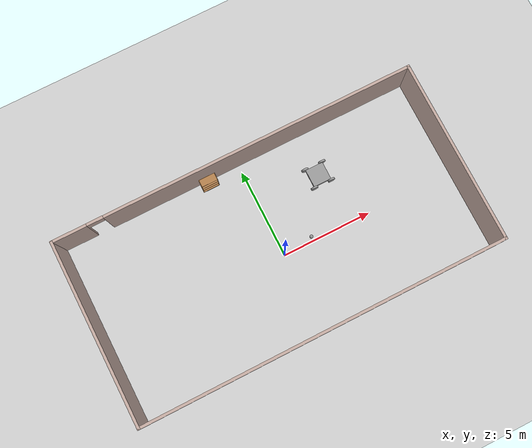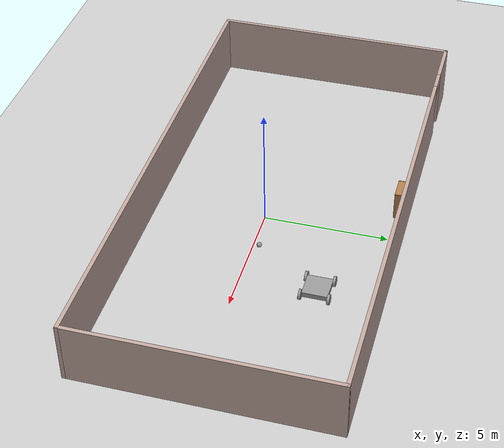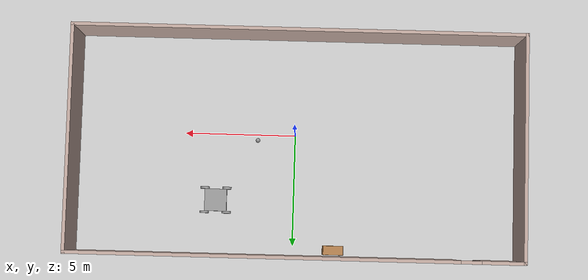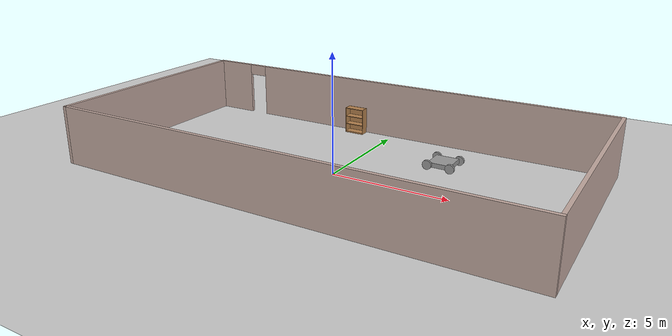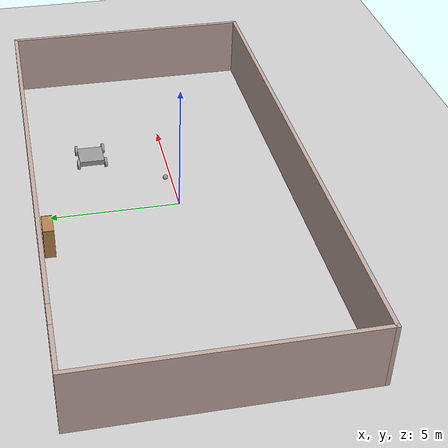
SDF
<sdf version="1.6">
 <world name="default">
  <plugin name="hello" filename="libhello.so"/>
  <light name="sun" type="directional">
   <pose>0 0 10 0 -0 0</pose>
   <diffuse>0.8 0.8 0.8 1</diffuse>
   <specular>0.2 0.2 0.2 1</specular>
   <attenuation>
    <range>1000</range>
    <constant>0.9</constant>
    <linear>0.01</linear>
    <quadratic>0.001</quadratic>
   </attenuation>
   <direction>-0.5 0.1 -0.9</direction>
  </light>
  <model name="ground_plane">
   <static>1</static>
   <link name="link">
    <collision name="collision">
     <geometry><plane><normal>0 0 1</normal><size>100 100</size></plane></geometry>
     <surface><friction><ode><mu>100</mu><mu2>50</mu2></ode></friction></surface>
    </collision>
    <visual name="visual">
     <cast_shadows>0</cast_shadows>
     <geometry><plane><normal>0 0 1</normal><size>100 100</size></plane></geometry>
     <material>
      <script><uri>file://media/materials/scripts/gazebo.material</uri><name>Gazebo/Grey</name></script>
     </material>
    </visual>
   </link>
  </model>
  <gravity>0 0 -9.8</gravity>
  <magnetic_field>6e-06 2.3e-05 -4.2e-05</magnetic_field>
  <atmosphere type="adiabatic"/>
  <physics name="default_physics" default="0" type="ode">
   <max_step_size>0.001</max_step_size>
   <real_time_factor>1</real_time_factor>
   <real_time_update_rate>1000</real_time_update_rate>
  </physics>
  <scene><ambient>0.4 0.4 0.4 1</ambient><background>0.7 0.7 0.7 1</background><shadows>1</shadows></scene>
  <spherical_coordinates>
   <surface_model>EARTH_WGS84</surface_model>
   <latitude_deg>0</latitude_deg>
   <longitude_deg>0</longitude_deg>
   <elevation>0</elevation>
   <heading_deg>0</heading_deg>
  </spherical_coordinates>
  <model name="myBuilding">
   <pose>-0.100304 0.50164 0 0 -0 0</pose>
   <link name="Wall_0">
    <pose>0 5 0 0 -0 0</pose>
    <visual name="Wall_0_Visual_0">
     <pose>-9.09037 0 1.25 0 -0 0</pose>
     <geometry><box><size>1.96927 0.15 2.5</size></box></geometry>
     <material>
      <script><uri>file://media/materials/scripts/gazebo.material</uri><name>Gazebo/Grey</name></script>
      <ambient>0.760784 0.662745 0.627451 1</ambient>
     </material>
     <meta><layer>0</layer></meta>
    </visual>
    <collision name="Wall_0_Collision_0">
     <geometry><box><size>1.96927 0.15 2.5</size></box></geometry>
     <pose>-9.09037 0 1.25 0 -0 0</pose>
    </collision>
    <visual name="Wall_0_Visual_1">
     <pose>1.43463 0 1.25 0 -0 0</pose>
     <geometry><box><size>17.2807 0.15 2.5</size></box></geometry>
     <material>
      <script><uri>file://media/materials/scripts/gazebo.material</uri><name>Gazebo/Grey</name></script>
      <ambient>0.760784 0.662745 0.627451 1</ambient>
     </material>
     <meta><layer>0</layer></meta>
    </visual>
    <collision name="Wall_0_Collision_1">
     <geometry><box><size>17.2807 0.15 2.5</size></box></geometry>
     <pose>1.43463 0 1.25 0 -0 0</pose>
    </collision>
    <visual name="Wall_0_Visual_2">
     <pose>-7.65573 0 2.25 0 -0 0</pose>
     <geometry><box><size>0.9 0.15 0.5</size></box></geometry>
     <material>
      <script><uri>file://media/materials/scripts/gazebo.material</uri><name>Gazebo/Grey</name></script>
      <ambient>0.760784 0.662745 0.627451 1</ambient>
     </material>
     <meta><layer>0</layer></meta>
    </visual>
    <collision name="Wall_0_Collision_2">
     <geometry><box><size>0.9 0.15 0.5</size></box></geometry>
     <pose>-7.65573 0 2.25 0 -0 0</pose>
    </collision>
   </link>
   <link name="Wall_2">
    <collision name="Wall_2_Collision">
     <geometry><box><size>10.15 0.15 2.5</size></box></geometry>
     <pose>0 0 1.25 0 -0 0</pose>
    </collision>
    <visual name="Wall_2_Visual">
     <pose>0 0 1.25 0 -0 0</pose>
     <geometry><box><size>10.15 0.15 2.5</size></box></geometry>
     <material>
      <script><uri>file://media/materials/scripts/gazebo.material</uri><name>Gazebo/Grey</name></script>
      <ambient>0.760784 0.662745 0.627451 1</ambient>
     </material>
     <meta><layer>0</layer></meta>
    </visual>
    <pose>10 0 0 0 0 -1.5708</pose>
   </link>
   <link name="Wall_3">
    <collision name="Wall_3_Collision">
     <geometry><box><size>20.15 0.15 2.5</size></box></geometry>
     <pose>0 0 1.25 0 -0 0</pose>
    </collision>
    <visual name="Wall_3_Visual">
     <pose>0 0 1.25 0 -0 0</pose>
     <geometry><box><size>20.15 0.15 2.5</size></box></geometry>
     <material>
      <script><uri>file://media/materials/scripts/gazebo.material</uri><name>Gazebo/Grey</name></script>
      <ambient>0.760784 0.662745 0.627451 1</ambient>
     </material>
     <meta><layer>0</layer></meta>
    </visual>
    <pose>0 -5 0 0 -0 3.14159</pose>
   </link>
   <link name="Wall_4">
    <collision name="Wall_4_Collision">
     <geometry><box><size>10.15 0.15 2.5</size></box></geometry>
     <pose>0 0 1.25 0 -0 0</pose>
    </collision>
    <visual name="Wall_4_Visual">
     <pose>0 0 1.25 0 -0 0</pose>
     <geometry><box><size>10.15 0.15 2.5</size></box></geometry>
     <material>
      <script><uri>file://media/materials/scripts/gazebo.material</uri><name>Gazebo/Grey</name></script>
      <ambient>0.760784 0.662745 0.627451 1</ambient>
     </material>
     <meta><layer>0</layer></meta>
    </visual>
    <pose>-10 0 0 0 -0 1.5708</pose>
   </link>
   <static>1</static>
  </model>
  <model name="robot_0">
   <link name="link_0">
    <inertial>
     <mass>1</mass>
     <inertia>
      <ixx>0.166667</ixx>
      <ixy>0</ixy>
      <ixz>0</ixz>
      <iyy>0.166667</iyy>
      <iyz>0</iyz>
      <izz>0.166667</izz>
     </inertia>
    </inertial>
    <visual name="visual">
     <geometry><box><size>1 1 0.2</size></box></geometry>
     <material>
      <lighting>1</lighting>
      <script><uri>file://media/materials/scripts/gazebo.material</uri><name>Gazebo/Grey</name></script>
      <shader type="pixel"><normal_map>__default__</normal_map></shader>
      <ambient>0.3 0.3 0.3 1</ambient>
      <diffuse>0.7 0.7 0.7 1</diffuse>
      <specular>0.01 0.01 0.01 1</specular>
      <emissive>0 0 0 1</emissive>
     </material>
    </visual>
    <collision name="collision">
     <geometry><box><size>1 1 0.2</size></box></geometry>
     <surface>
      <friction>
       <ode><mu>1</mu><mu2>1</mu2><fdir1>0 0 0</fdir1><slip1>0</slip1><slip2>0</slip2></ode>
       <torsional>
        <coefficient>1</coefficient>
        <patch_radius>0</patch_radius>
        <surface_radius>0</surface_radius>
        <use_patch_radius>1</use_patch_radius>
        <ode><slip>0</slip></ode>
       </torsional>
      </friction>
      <bounce><restitution_coefficient>0</restitution_coefficient><threshold>1e+06</threshold></bounce>
      <contact>
       <collide_without_contact>0</collide_without_contact>
       <collide_without_contact_bitmask>1</collide_without_contact_bitmask>
       <collide_bitmask>1</collide_bitmask>
       <ode>
        <soft_cfm>0</soft_cfm>
        <soft_erp>0.2</soft_erp>
        <kp>1e+13</kp>
        <kd>1</kd>
        <max_vel>0.01</max_vel>
        <min_depth>0</min_depth>
       </ode>
       <bullet>
        <split_impulse>1</split_impulse>
        <split_impulse_penetration_threshold>-0.01</split_impulse_penetration_threshold>
        <soft_cfm>0</soft_cfm>
        <soft_erp>0.2</soft_erp>
        <kp>1e+13</kp>
        <kd>1</kd>
       </bullet>
      </contact>
     </surface>
    </collision>
   </link>
   <link name="link_1">
    <pose>-0.5 -0.55 0 1.5707 -0 0</pose>
    <inertial>
     <mass>1</mass>
     <inertia><ixx>0.145833</ixx><ixy>0</ixy><ixz>0</ixz><iyy>0.145833</iyy><iyz>0</iyz><izz>0.125</izz></inertia>
    </inertial>
    <visual name="visual">
     <geometry><cylinder><radius>0.2</radius><length>0.1</length></cylinder></geometry>
     <material>
      <lighting>1</lighting>
      <script><uri>file://media/materials/scripts/gazebo.material</uri><name>Gazebo/Grey</name></script>
      <shader type="pixel"><normal_map>__default__</normal_map></shader>
      <ambient>0.3 0.3 0.3 1</ambient>
      <diffuse>0.7 0.7 0.7 1</diffuse>
      <specular>0.01 0.01 0.01 1</specular>
      <emissive>0 0 0 1</emissive>
     </material>
    </visual>
    <collision name="collision">
     <geometry><cylinder><radius>0.2</radius><length>0.1</length></cylinder></geometry>
     <surface>
      <friction>
       <ode><mu>1</mu><mu2>1</mu2><fdir1>0 0 0</fdir1><slip1>0</slip1><slip2>0</slip2></ode>
       <torsional>
        <coefficient>1</coefficient>
        <patch_radius>0</patch_radius>
        <surface_radius>0</surface_radius>
        <use_patch_radius>1</use_patch_radius>
        <ode><slip>0</slip></ode>
       </torsional>
      </friction>
      <bounce><restitution_coefficient>0</restitution_coefficient><threshold>1e+06</threshold></bounce>
      <contact>
       <collide_without_contact>0</collide_without_contact>
       <collide_without_contact_bitmask>1</collide_without_contact_bitmask>
       <collide_bitmask>1</collide_bitmask>
       <ode>
        <soft_cfm>0</soft_cfm>
        <soft_erp>0.2</soft_erp>
        <kp>1e+13</kp>
        <kd>1</kd>
        <max_vel>0.01</max_vel>
        <min_depth>0</min_depth>
       </ode>
       <bullet>
        <split_impulse>1</split_impulse>
        <split_impulse_penetration_threshold>-0.01</split_impulse_penetration_threshold>
        <soft_cfm>0</soft_cfm>
        <soft_erp>0.2</soft_erp>
        <kp>1e+13</kp>
        <kd>1</kd>
       </bullet>
      </contact>
     </surface>
    </collision>
   </link>
   <link name="link_1_clone">
    <pose>-0.5 0.55 0 1.5707 -0 0</pose>
    <inertial>
     <mass>1</mass>
     <inertia><ixx>0.145833</ixx><ixy>0</ixy><ixz>0</ixz><iyy>0.145833</iyy><iyz>0</iyz><izz>0.125</izz></inertia>
    </inertial>
    <visual name="visual">
     <geometry><cylinder><radius>0.2</radius><length>0.1</length></cylinder></geometry>
     <material>
      <lighting>1</lighting>
      <script><uri>file://media/materials/scripts/gazebo.material</uri><name>Gazebo/Grey</name></script>
      <shader type="pixel"><normal_map>__default__</normal_map></shader>
      <ambient>0.3 0.3 0.3 1</ambient>
      <diffuse>0.7 0.7 0.7 1</diffuse>
      <specular>0.01 0.01 0.01 1</specular>
      <emissive>0 0 0 1</emissive>
     </material>
    </visual>
    <collision name="collision">
     <geometry><cylinder><radius>0.2</radius><length>0.1</length></cylinder></geometry>
     <surface>
      <friction>
       <ode><mu>1</mu><mu2>1</mu2><fdir1>0 0 0</fdir1><slip1>0</slip1><slip2>0</slip2></ode>
       <torsional>
        <coefficient>1</coefficient>
        <patch_radius>0</patch_radius>
        <surface_radius>0</surface_radius>
        <use_patch_radius>1</use_patch_radius>
        <ode><slip>0</slip></ode>
       </torsional>
      </friction>
      <bounce><restitution_coefficient>0</restitution_coefficient><threshold>1e+06</threshold></bounce>
      <contact>
       <collide_without_contact>0</collide_without_contact>
       <collide_without_contact_bitmask>1</collide_without_contact_bitmask>
       <collide_bitmask>1</collide_bitmask>
       <ode>
        <soft_cfm>0</soft_cfm>
        <soft_erp>0.2</soft_erp>
        <kp>1e+13</kp>
        <kd>1</kd>
        <max_vel>0.01</max_vel>
        <min_depth>0</min_depth>
       </ode>
       <bullet>
        <split_impulse>1</split_impulse>
        <split_impulse_penetration_threshold>-0.01</split_impulse_penetration_threshold>
        <soft_cfm>0</soft_cfm>
        <soft_erp>0.2</soft_erp>
        <kp>1e+13</kp>
        <kd>1</kd>
       </bullet>
      </contact>
     </surface>
    </collision>
   </link>
   <link name="link_1_clone_0">
    <pose>0.5 0.55 0 1.5707 -0 0</pose>
    <inertial>
     <mass>1</mass>
     <inertia><ixx>0.145833</ixx><ixy>0</ixy><ixz>0</ixz><iyy>0.145833</iyy><iyz>0</iyz><izz>0.125</izz></inertia>
    </inertial>
    <visual name="visual">
     <geometry><cylinder><radius>0.2</radius><length>0.1</length></cylinder></geometry>
     <material>
      <lighting>1</lighting>
      <script><uri>file://media/materials/scripts/gazebo.material</uri><name>Gazebo/Grey</name></script>
      <shader type="pixel"><normal_map>__default__</normal_map></shader>
      <ambient>0.3 0.3 0.3 1</ambient>
      <diffuse>0.7 0.7 0.7 1</diffuse>
      <specular>0.01 0.01 0.01 1</specular>
      <emissive>0 0 0 1</emissive>
     </material>
    </visual>
    <collision name="collision">
     <geometry><cylinder><radius>0.2</radius><length>0.1</length></cylinder></geometry>
     <surface>
      <friction>
       <ode><mu>1</mu><mu2>1</mu2><fdir1>0 0 0</fdir1><slip1>0</slip1><slip2>0</slip2></ode>
       <torsional>
        <coefficient>1</coefficient>
        <patch_radius>0</patch_radius>
        <surface_radius>0</surface_radius>
        <use_patch_radius>1</use_patch_radius>
        <ode><slip>0</slip></ode>
       </torsional>
      </friction>
      <bounce><restitution_coefficient>0</restitution_coefficient><threshold>1e+06</threshold></bounce>
      <contact>
       <collide_without_contact>0</collide_without_contact>
       <collide_without_contact_bitmask>1</collide_without_contact_bitmask>
       <collide_bitmask>1</collide_bitmask>
       <ode>
        <soft_cfm>0</soft_cfm>
        <soft_erp>0.2</soft_erp>
        <kp>1e+13</kp>
        <kd>1</kd>
        <max_vel>0.01</max_vel>
        <min_depth>0</min_depth>
       </ode>
       <bullet>
        <split_impulse>1</split_impulse>
        <split_impulse_penetration_threshold>-0.01</split_impulse_penetration_threshold>
        <soft_cfm>0</soft_cfm>
        <soft_erp>0.2</soft_erp>
        <kp>1e+13</kp>
        <kd>1</kd>
       </bullet>
      </contact>
     </surface>
    </collision>
   </link>
   <link name="link_1_clone_1">
    <pose>0.5 -0.55 0 1.5707 -0 0</pose>
    <inertial>
     <mass>1</mass>
     <inertia><ixx>0.145833</ixx><ixy>0</ixy><ixz>0</ixz><iyy>0.145833</iyy><iyz>0</iyz><izz>0.125</izz></inertia>
    </inertial>
    <visual name="visual">
     <geometry><cylinder><radius>0.2</radius><length>0.1</length></cylinder></geometry>
     <material>
      <lighting>1</lighting>
      <script><uri>file://media/materials/scripts/gazebo.material</uri><name>Gazebo/Grey</name></script>
      <shader type="pixel"><normal_map>__default__</normal_map></shader>
      <ambient>0.3 0.3 0.3 1</ambient>
      <diffuse>0.7 0.7 0.7 1</diffuse>
      <specular>0.01 0.01 0.01 1</specular>
      <emissive>0 0 0 1</emissive>
     </material>
    </visual>
    <collision name="collision">
     <geometry><cylinder><radius>0.2</radius><length>0.1</length></cylinder></geometry>
     <surface>
      <friction>
       <ode><mu>1</mu><mu2>1</mu2><fdir1>0 0 0</fdir1><slip1>0</slip1><slip2>0</slip2></ode>
       <torsional>
        <coefficient>1</coefficient>
        <patch_radius>0</patch_radius>
        <surface_radius>0</surface_radius>
        <use_patch_radius>1</use_patch_radius>
        <ode><slip>0</slip></ode>
       </torsional>
      </friction>
      <bounce><restitution_coefficient>0</restitution_coefficient><threshold>1e+06</threshold></bounce>
      <contact>
       <collide_without_contact>0</collide_without_contact>
       <collide_without_contact_bitmask>1</collide_without_contact_bitmask>
       <collide_bitmask>1</collide_bitmask>
       <ode>
        <soft_cfm>0</soft_cfm>
        <soft_erp>0.2</soft_erp>
        <kp>1e+13</kp>
        <kd>1</kd>
        <max_vel>0.01</max_vel>
        <min_depth>0</min_depth>
       </ode>
       <bullet>
        <split_impulse>1</split_impulse>
        <split_impulse_penetration_threshold>-0.01</split_impulse_penetration_threshold>
        <soft_cfm>0</soft_cfm>
        <soft_erp>0.2</soft_erp>
        <kp>1e+13</kp>
        <kd>1</kd>
       </bullet>
      </contact>
     </surface>
    </collision>
   </link>
   <joint name="link_0_JOINT_0" type="revolute">
    <parent>link_0</parent>
    <child>link_1_clone_1</child>
    <axis>
     <xyz>0 0 1</xyz>
     <use_parent_model_frame>0</use_parent_model_frame>
     <limit>
      <lower>-1.79769e+308</lower>
      <upper>1.79769e+308</upper>
      <effort>-1</effort>
      <velocity>-1</velocity>
     </limit>
     <dynamics>
      <spring_reference>0</spring_reference>
      <spring_stiffness>0</spring_stiffness>
      <damping>0</damping>
     </dynamics>
    </axis>
    <physics>
     <ode><limit><cfm>0</cfm><erp>0.2</erp></limit><suspension><cfm>0</cfm><erp>0.2</erp></suspension></ode>
    </physics>
   </joint>
   <joint name="link_0_JOINT_1" type="revolute">
    <parent>link_0</parent>
    <child>link_1_clone_0</child>
    <axis>
     <xyz>0 0 1</xyz>
     <use_parent_model_frame>0</use_parent_model_frame>
     <limit>
      <lower>-1.79769e+308</lower>
      <upper>1.79769e+308</upper>
      <effort>-1</effort>
      <velocity>-1</velocity>
     </limit>
     <dynamics>
      <spring_reference>0</spring_reference>
      <spring_stiffness>0</spring_stiffness>
      <damping>0</damping>
     </dynamics>
    </axis>
    <physics>
     <ode><limit><cfm>0</cfm><erp>0.2</erp></limit><suspension><cfm>0</cfm><erp>0.2</erp></suspension></ode>
    </physics>
   </joint>
   <joint name="link_0_JOINT_2" type="revolute">
    <parent>link_0</parent>
    <child>link_1_clone</child>
    <axis>
     <xyz>0 0 1</xyz>
     <use_parent_model_frame>0</use_parent_model_frame>
     <limit>
      <lower>-1.79769e+308</lower>
      <upper>1.79769e+308</upper>
      <effort>-1</effort>
      <velocity>-1</velocity>
     </limit>
     <dynamics>
      <spring_reference>0</spring_reference>
      <spring_stiffness>0</spring_stiffness>
      <damping>0</damping>
     </dynamics>
    </axis>
    <physics>
     <ode><limit><cfm>0</cfm><erp>0.2</erp></limit><suspension><cfm>0</cfm><erp>0.2</erp></suspension></ode>
    </physics>
   </joint>
   <joint name="link_0_JOINT_3" type="revolute">
    <parent>link_0</parent>
    <child>link_1</child>
    <axis>
     <xyz>0 0 1</xyz>
     <use_parent_model_frame>0</use_parent_model_frame>
     <limit>
      <lower>-1.79769e+308</lower>
      <upper>1.79769e+308</upper>
      <effort>-1</effort>
      <velocity>-1</velocity>
     </limit>
     <dynamics>
      <spring_reference>0</spring_reference>
      <spring_stiffness>0</spring_stiffness>
      <damping>0</damping>
     </dynamics>
    </axis>
    <physics>
     <ode><limit><cfm>0</cfm><erp>0.2</erp></limit><suspension><cfm>0</cfm><erp>0.2</erp></suspension></ode>
    </physics>
   </joint>
   <static>0</static>
   <pose>3.539 3.01644 0.200005 0 0 -0.001137</pose>
  </model>
  <model name="bookshelf">
   <static>1</static>
   <link name="link">
    <inertial><mass>1</mass></inertial>
    <collision name="back">
     <pose>0 0.005 0.6 0 -0 0</pose>
     <geometry><box><size>0.9 0.01 1.2</size></box></geometry>
    </collision>
    <visual name="visual1">
     <pose>0 0.005 0.6 0 -0 0</pose>
     <geometry><box><size>0.9 0.01 1.2</size></box></geometry>
     <material>
      <script><uri>file://media/materials/scripts/gazebo.material</uri><name>Gazebo/Wood</name></script>
     </material>
    </visual>
    <collision name="left_side">
     <pose>0.45 -0.195 0.6 0 -0 0</pose>
     <geometry><box><size>0.02 0.4 1.2</size></box></geometry>
    </collision>
    <visual name="visual2">
     <pose>0.45 -0.195 0.6 0 -0 0</pose>
     <geometry><box><size>0.02 0.4 1.2</size></box></geometry>
     <material>
      <script><uri>file://media/materials/scripts/gazebo.material</uri><name>Gazebo/Wood</name></script>
     </material>
    </visual>
    <collision name="right_side">
     <pose>-0.45 -0.195 0.6 0 -0 0</pose>
     <geometry><box><size>0.02 0.4 1.2</size></box></geometry>
    </collision>
    <visual name="visual3">
     <pose>-0.45 -0.195 0.6 0 -0 0</pose>
     <geometry><box><size>0.02 0.4 1.2</size></box></geometry>
     <material>
      <script><uri>file://media/materials/scripts/gazebo.material</uri><name>Gazebo/Wood</name></script>
     </material>
    </visual>
    <collision name="bottom">
     <pose>0 -0.195 0.03 0 -0 0</pose>
     <geometry><box><size>0.88 0.4 0.06</size></box></geometry>
    </collision>
    <visual name="visual4">
     <pose>0 -0.195 0.03 0 -0 0</pose>
     <geometry><box><size>0.88 0.4 0.06</size></box></geometry>
     <material>
      <script><uri>file://media/materials/scripts/gazebo.material</uri><name>Gazebo/Wood</name></script>
     </material>
    </visual>
    <collision name="top">
     <pose>0 -0.195 1.19 0 -0 0</pose>
     <geometry><box><size>0.88 0.4 0.02</size></box></geometry>
    </collision>
    <visual name="visual5">
     <pose>0 -0.195 1.19 0 -0 0</pose>
     <geometry><box><size>0.88 0.4 0.02</size></box></geometry>
     <material>
      <script><uri>file://media/materials/scripts/gazebo.material</uri><name>Gazebo/Wood</name></script>
     </material>
    </visual>
    <collision name="low_shelf">
     <pose>0 -0.195 0.43 0 -0 0</pose>
     <geometry><box><size>0.88 0.4 0.02</size></box></geometry>
    </collision>
    <visual name="visual6">
     <pose>0 -0.195 0.43 0 -0 0</pose>
     <geometry><box><size>0.88 0.4 0.02</size></box></geometry>
     <material>
      <script><uri>file://media/materials/scripts/gazebo.material</uri><name>Gazebo/Wood</name></script>
     </material>
    </visual>
    <collision name="high_shelf">
     <pose>0 -0.195 0.8 0 -0 0</pose>
     <geometry><box><size>0.88 0.4 0.02</size></box></geometry>
    </collision>
    <visual name="visual7">
     <pose>0 -0.195 0.8 0 -0 0</pose>
     <geometry><box><size>0.88 0.4 0.02</size></box></geometry>
     <material>
      <script><uri>file://media/materials/scripts/gazebo.material</uri><name>Gazebo/Wood</name></script>
     </material>
    </visual>
   </link>
   <pose>-1.8115 5.35437 0 0 -0 0</pose>
  </model>
  <model name="unit_sphere">
   <link name="link">
    <inertial>
     <mass>1</mass>
     <inertia><ixx>0.1</ixx><ixy>0</ixy><ixz>0</ixz><iyy>0.1</iyy><iyz>0</iyz><izz>0.1</izz></inertia>
    </inertial>
    <visual name="visual">
     <geometry><sphere><radius>0.1</radius></sphere></geometry>
     <material>
      <script><name>Gazebo/Grey</name><uri>file://media/materials/scripts/gazebo.material</uri></script>
      <shader type="pixel"><normal_map>__default__</normal_map></shader>
      <ambient>1 1 1 1</ambient>
      <diffuse>1 1 1 1</diffuse>
      <specular>1 1 1 1</specular>
      <emissive>1 1 1 1</emissive>
     </material>
    </visual>
    <collision name="collision">
     <geometry><sphere><radius>0.1</radius></sphere></geometry>
     <surface>
      <friction>
       <ode><mu>1</mu><mu2>1</mu2><fdir1>0 0 0</fdir1><slip1>0</slip1><slip2>0</slip2></ode>
       <torsional>
        <coefficient>1</coefficient>
        <patch_radius>0</patch_radius>
        <surface_radius>0</surface_radius>
        <use_patch_radius>1</use_patch_radius>
        <ode><slip>0</slip></ode>
       </torsional>
      </friction>
      <bounce><restitution_coefficient>0</restitution_coefficient><threshold>1e+06</threshold></bounce>
      <contact>
       <collide_without_contact>0</collide_without_contact>
       <collide_without_contact_bitmask>1</collide_without_contact_bitmask>
       <collide_bitmask>1</collide_bitmask>
       <ode>
        <soft_cfm>0</soft_cfm>
        <soft_erp>0.2</soft_erp>
        <kp>1e+13</kp>
        <kd>1</kd>
        <max_vel>0.01</max_vel>
        <min_depth>0</min_depth>
       </ode>
       <bullet>
        <split_impulse>1</split_impulse>
        <split_impulse_penetration_threshold>-0.01</split_impulse_penetration_threshold>
        <soft_cfm>0</soft_cfm>
        <soft_erp>0.2</soft_erp>
        <kp>1e+13</kp>
        <kd>1</kd>
       </bullet>
      </contact>
     </surface>
    </collision>
   </link>
   <static>0</static>
   <pose>1.69481 0.24676 0.1 0 -0 0</pose>
  </model>
 </world>
</sdf>
